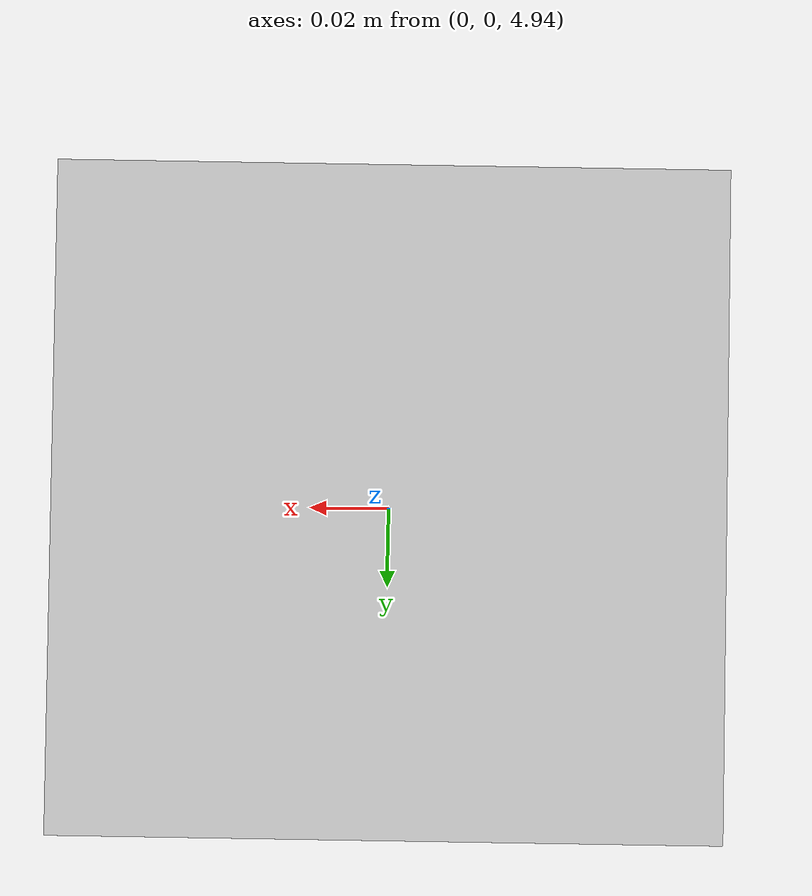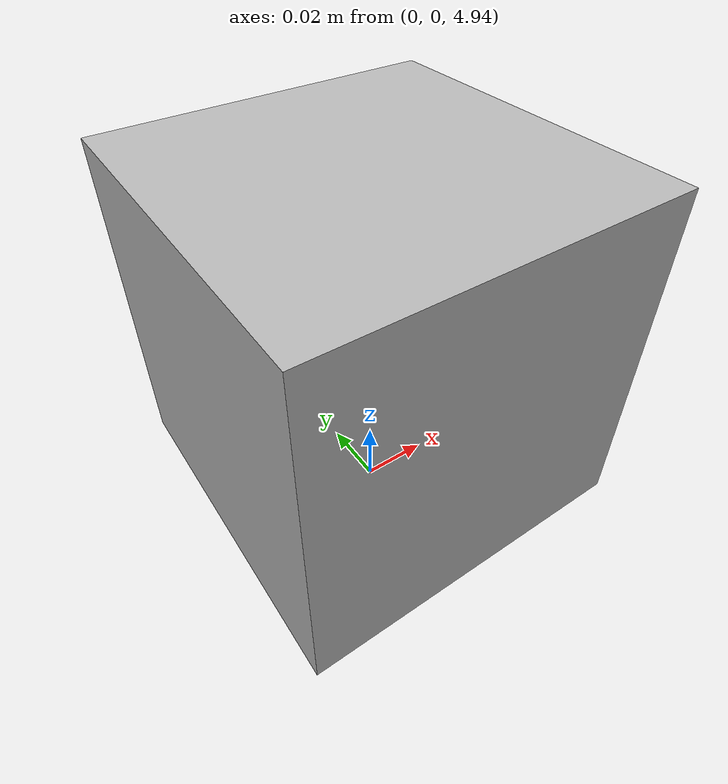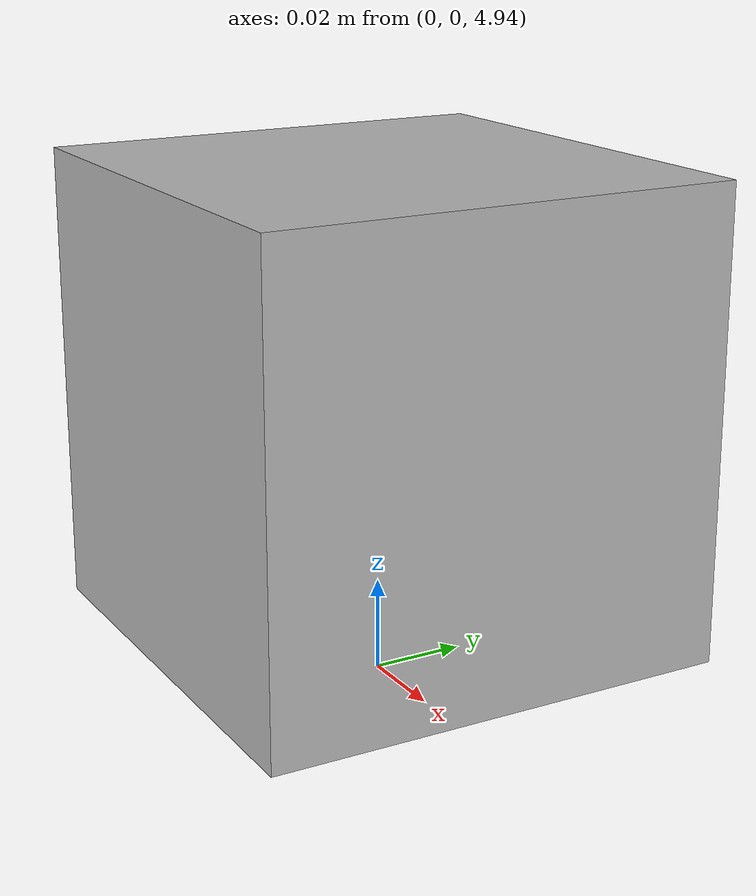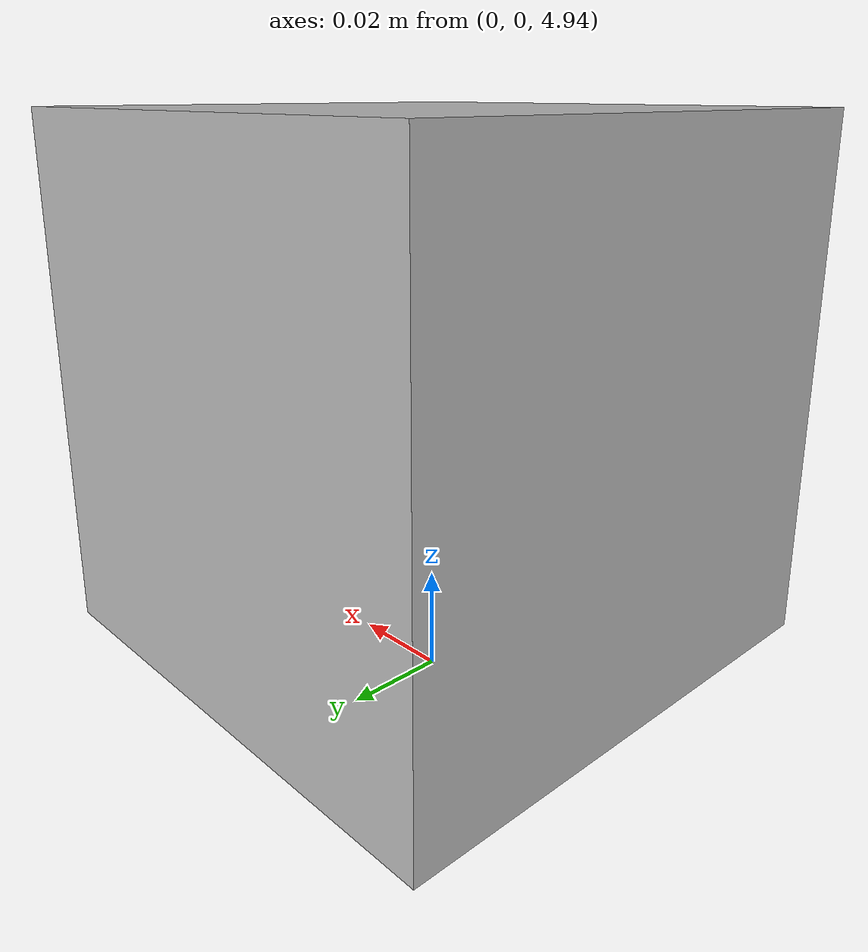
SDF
<?xml version="1.0" ?>
<sdf version="1.8">
    <world name="visual_odometry">
        <plugin filename="gz-sim-physics-system" name="gz::sim::systems::Physics"/>
        <plugin filename="gz-sim-user-commands-system" name="gz::sim::systems::UserCommands"/>
        <plugin filename="gz-sim-scene-broadcaster-system" name="gz::sim::systems::SceneBroadcaster"/>
        <plugin name='gz::sim::systems::Contact' filename='gz-sim-contact-system'/>
        <plugin name='gz::sim::systems::Imu' filename='gz-sim-imu-system'/>
        <plugin name='gz::sim::systems::AirPressure' filename='gz-sim-air-pressure-system'/>
        <plugin name='gz::sim::systems::Sensors' filename='gz-sim-sensors-system'>
            <render_engine>ogre2</render_engine>
        </plugin>

        <gui fullscreen="0">
            <plugin name='3D View' filename='GzScene3D'>
                <gz-gui>
                    <title>3D View</title>
                    <property type="bool" key="showTitleBar">false</property>
                    <property type="string" key="state">docked</property>
                </gz-gui>
                <engine>ogre2</engine>
                <scene>scene</scene>
                <ambient_light>0.4 0.4 0.4</ambient_light>
                <background_color>0.8 0.8 0.8</background_color>
                <camera_pose>0 -5 5 0 0.5 1.57</camera_pose>
                <camera_clip>
                    <near>0.25</near>
                    <far>25000</far>
                </camera_clip>
                <horizontal_fov>57.29578</horizontal_fov>
            </plugin>
            <plugin filename="WorldControl" name="World control">
                <gz-gui>
                    <title>World control</title>
                    <property type="bool" key="showTitleBar">false</property>
                    <property type="bool" key="resizable">false</property>
                    <property type="double" key="height">72</property>
                    <property type="double" key="width">150</property>
                    <property type="double" key="z">1</property>

                    <property type="string" key="state">floating</property>
                    <anchors target="3D View">
                    <line own="left" target="left"/>
                    <line own="bottom" target="bottom"/>
                    </anchors>
                </gz-gui>
                <play_pause>true</play_pause>
                <step>true</step>
                <start_paused>true</start_paused>
                <service>/world/world_demo/control</service>
                <stats_topic>/world/world_demo/stats</stats_topic>
            </plugin>
            <plugin filename="WorldStats" name="World stats">
                <gz-gui>
                    <title>World stats</title>
                    <property type="bool" key="showTitleBar">false</property>
                    <property type="bool" key="resizable">false</property>
                    <property type="double" key="height">110</property>
                    <property type="double" key="width">290</property>
                    <property type="double" key="z">1</property>

                    <property type="string" key="state">floating</property>
                    <anchors target="3D View">
                    <line own="right" target="right"/>
                    <line own="bottom" target="bottom"/>
                    </anchors>
                </gz-gui>

                <sim_time>true</sim_time>
                <real_time>true</real_time>
                <real_time_factor>true</real_time_factor>
                <iterations>true</iterations>
                <topic>/world/world_demo/stats</topic>
            </plugin>

            <plugin filename="Shapes" name="Shapes">
                <gz-gui>
                    <property key="resizable" type="bool">false</property>
                    <property key="x" type="double">0</property>
                    <property key="y" type="double">0</property>
                    <property key="width" type="double">250</property>
                    <property key="height" type="double">50</property>
                    <property key="state" type="string">floating</property>
                    <property key="showTitleBar" type="bool">false</property>
                    <property key="cardBackground" type="string">#666666</property>
                </gz-gui>
            </plugin>
            <plugin filename="Lights" name="Lights">
                <gz-gui>
                    <property key="resizable" type="bool">false</property>
                    <property key="x" type="double">250</property>
                    <property key="y" type="double">0</property>
                    <property key="width" type="double">150</property>
                    <property key="height" type="double">50</property>
                    <property key="state" type="string">floating</property>
                    <property key="showTitleBar" type="bool">false</property>
                    <property key="cardBackground" type="string">#666666</property>
                </gz-gui>
            </plugin>
            <plugin filename="TransformControl" name="Transform control">
                <gz-gui>
                    <property key="resizable" type="bool">false</property>
                    <property key="x" type="double">400</property>
                    <property key="y" type="double">0</property>
                    <property key="width" type="double">250</property>
                    <property key="height" type="double">50</property>
                    <property key="state" type="string">floating</property>
                    <property key="showTitleBar" type="bool">false</property>
                    <property key="cardBackground" type="string">#666666</property>
                </gz-gui>
            </plugin>

            <plugin filename="EntityTree" name="Entity tree"></plugin>
            <plugin filename="ComponentInspector" name="Component inspector">
                <gz-gui>
                    <property type="string" key="state">docked</property>
                </gz-gui>
            </plugin>
            <plugin filename="ImageDisplay" name="Image display">
                <topic>/camera</topic>
            </plugin>
        </gui>

        <include>
            <pose>0 0 0.2 0 0 0</pose>
            <uri>model://checkerboard_plane</uri>
        </include>

        <include>
            <pose>0 0 0.075 0 0 0</pose>
            <uri>model://gray_ground</uri>
        </include>

        <include>
            <pose>0 0 5 0 1.57 0</pose>
            <uri>model://camera</uri>
        </include>

        <light type="directional" name="sun">
            <cast_shadows>false</cast_shadows>
            <pose>0 0 10 0 0 0</pose>
            <diffuse>0.8 0.8 0.8 1</diffuse>
            <specular>0.2 0.2 0.2 1</specular>
            <attenuation>
                <range>1000</range>
                <constant>0.9</constant>
                <linear>0.01</linear>
                <quadratic>0.001</quadratic>
            </attenuation>
            <direction>-0.5 0.1 -0.9</direction>
        </light>
    </world>
</sdf>

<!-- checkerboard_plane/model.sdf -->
<sdf version="1.5">
  <model name="checkerboard_plane">
    <static>true</static>
    <link name="link">
      <collision name="collision">
        <geometry>
          <plane>
            <normal>0 0 1</normal>
            <size>2000 2000</size>
          </plane>
        </geometry>
        <surface>
          <friction>
            <ode>
              <mu>100</mu>
              <mu2>50</mu2>
            </ode>
          </friction>
        </surface>
      </collision>
      <visual name="visual">
        <cast_shadows>false</cast_shadows>
        <geometry>
          <plane>
            <normal>0 0 1</normal>
            <size>2000 2000</size>
          </plane>
        </geometry>
        <material>
          <script>
            <uri>model://checkerboard_plane/materials/scripts</uri>
            <uri>model://checkerboard_plane/materials/textures</uri>
            <name>Checkerboard/Checkerboard</name>
          </script>
        </material>
      </visual>
    </link>
  </model>
</sdf>

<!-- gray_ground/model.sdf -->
<sdf version="1.8">
 	 <model name="ground_plane">
		<pose>0 0 0 0 -0 0</pose>
		<static>true</static>
		<link name='link'>
			<collision name='collision'>
				<geometry>
					<plane>
						<normal>0 0 1</normal>
						<size>1 1</size>
					</plane>
				</geometry>
				<surface>
					<friction>
						<ode/>
					</friction>
					<bounce/>
					<contact/>
				</surface>
			</collision>
			<visual name='visual'>
				<geometry>
				<plane>
					<normal>0 0 1</normal>
					<size>100 100</size>
				</plane>
				</geometry>
				<material>
					<ambient>0.1 0.1 0.1 1</ambient>
					<diffuse>0.3 0.3 0.3 1</diffuse>
					<specular>0 0 1 1</specular>
				</material>
			</visual>
			<pose>0 0 0 0 -0 0</pose>
			<inertial>
				<pose>0 0 0 0 -0 0</pose>
				<mass>1</mass>
				<inertia>
				<ixx>1</ixx>
				<ixy>0</ixy>
				<ixz>0</ixz>
				<iyy>1</iyy>
				<iyz>0</iyz>
				<izz>1</izz>
				</inertia>
			</inertial>
			<enable_wind>false</enable_wind>
		</link>
		<self_collide>false</self_collide>
    </model>
</sdf>

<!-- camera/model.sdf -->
<sdf version="1.5">
  <model name="camera">
    <pose>0 0 0.05 0 0 0</pose>
    <link name="link">
      <inertial>
        <mass>0.1</mass>
        <inertia>
          <ixx>0.000166667</ixx>
          <iyy>0.000166667</iyy>
          <izz>0.000166667</izz>
        </inertia>
      </inertial>
      <collision name="collision">
        <geometry>
          <box>
            <size>0.1 0.1 0.1</size>
          </box>
        </geometry>
      </collision>
      <visual name="visual">
        <geometry>
          <box>
            <size>0.1 0.1 0.1</size>
          </box>
        </geometry>
      </visual>
      <sensor name="camera" type="camera">
        <camera>
          <horizontal_fov>1.047</horizontal_fov>
          <image>
            <width>320</width>
            <height>240</height>
          </image>
          <clip>
            <near>0.1</near>
            <far>100</far>
          </clip>
        </camera>
        <always_on>1</always_on>
        <update_rate>30</update_rate>
        <visualize>true</visualize>
      </sensor>
    </link>
  </model>
</sdf>
